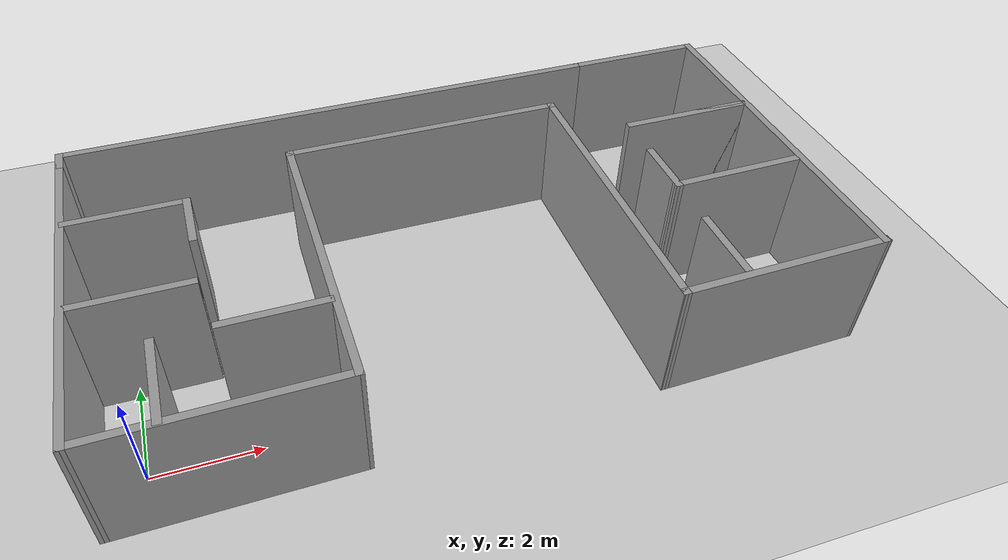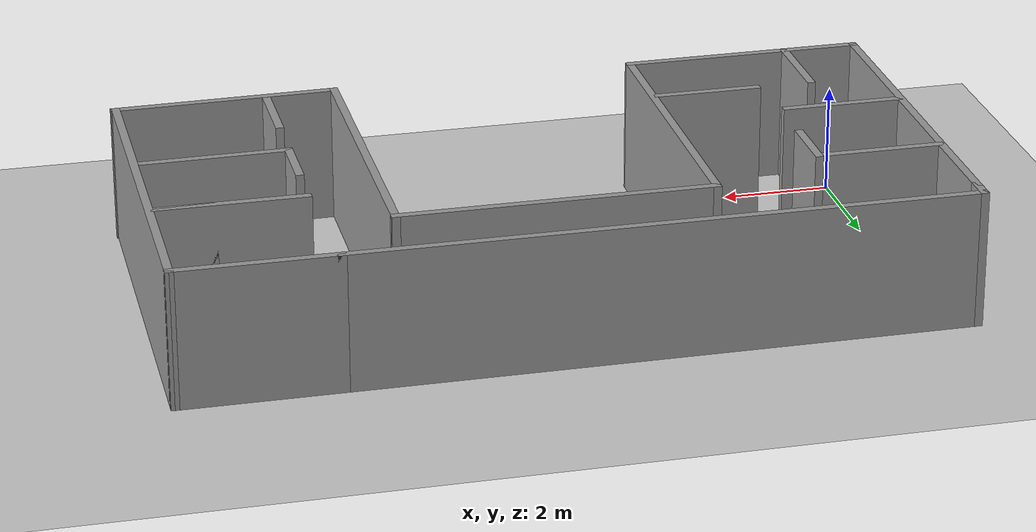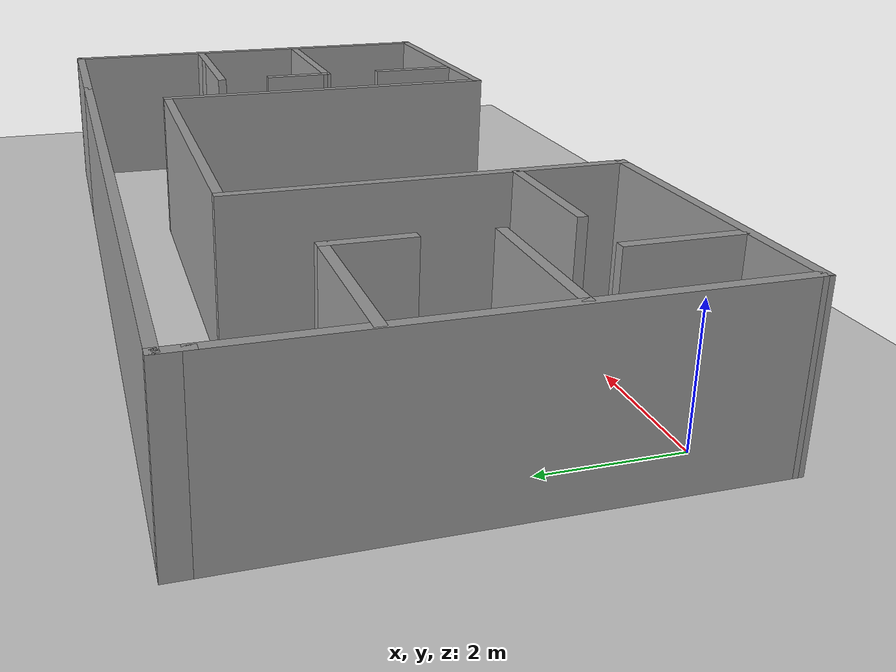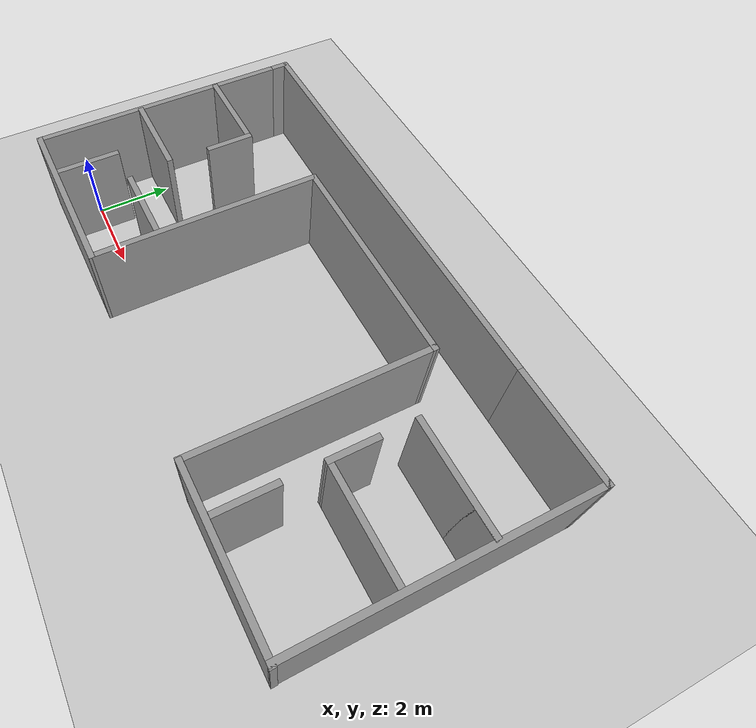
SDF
<sdf version="1.7">
 <world name="default">
  <light name="sun" type="directional">
   <pose>0 0 10 0 -0 0</pose>
   <diffuse>0.8 0.8 0.8 1</diffuse>
   <specular>0.2 0.2 0.2 1</specular>
   <attenuation>
    <range>1000</range>
    <constant>0.9</constant>
    <linear>0.01</linear>
    <quadratic>0.001</quadratic>
   </attenuation>
   <direction>-0.5 0.1 -0.9</direction>
   <spot><inner_angle>0</inner_angle><outer_angle>0</outer_angle><falloff>0</falloff></spot>
  </light>
  <model name="ground_plane">
   <static>1</static>
   <link name="link">
    <collision name="collision">
     <geometry><plane><normal>0 0 1</normal><size>100 100</size></plane></geometry>
     <surface><friction><ode><mu>100</mu><mu2>50</mu2></ode></friction></surface>
    </collision>
    <visual name="visual">
     <cast_shadows>0</cast_shadows>
     <geometry><plane><normal>0 0 1</normal><size>100 100</size></plane></geometry>
     <material>
      <script><uri>file://media/materials/scripts/gazebo.material</uri><name>Gazebo/Grey</name></script>
     </material>
    </visual>
   </link>
  </model>
  <gravity>0 0 -9.8</gravity>
  <magnetic_field>6e-06 2.3e-05 -4.2e-05</magnetic_field>
  <atmosphere type="adiabatic"/>
  <physics type="ode">
   <max_step_size>0.001</max_step_size>
   <real_time_factor>1</real_time_factor>
   <real_time_update_rate>1000</real_time_update_rate>
  </physics>
  <scene><ambient>0.4 0.4 0.4 1</ambient><background>0.7 0.7 0.7 1</background><shadows>1</shadows></scene>
  <spherical_coordinates>
   <surface_model>EARTH_WGS84</surface_model>
   <latitude_deg>0</latitude_deg>
   <longitude_deg>0</longitude_deg>
   <elevation>0</elevation>
   <heading_deg>0</heading_deg>
  </spherical_coordinates>
  <model name="indoors_isolated2">
   <pose>6.24988 2.67944 0 0 -0 0</pose>
   <link name="Wall_0">
    <collision name="Wall_0_Collision">
     <geometry><box><size>4.50008 0.15 2.5</size></box></geometry>
     <pose>0 0 1.25 0 -0 0</pose>
    </collision>
    <visual name="Wall_0_Visual">
     <pose>0 0 1.25 0 -0 0</pose>
     <geometry><box><size>4.50008 0.15 2.5</size></box></geometry>
     <material>
      <script><uri>file://media/materials/scripts/gazebo.material</uri><name>Gazebo/Grey</name></script>
      <ambient>1 1 1 1</ambient>
     </material>
     <meta><layer>0</layer></meta>
    </visual>
    <pose>-4.80329 -3.58655 0 0 -0 0.006115</pose>
   </link>
   <link name="Wall_1">
    <collision name="Wall_1_Collision">
     <geometry><box><size>6 0.15 2.5</size></box></geometry>
     <pose>0 0 1.25 0 -0 0</pose>
    </collision>
    <visual name="Wall_1_Visual">
     <pose>0 0 1.25 0 -0 0</pose>
     <geometry><box><size>6 0.15 2.5</size></box></geometry>
     <material>
      <script><uri>file://media/materials/scripts/gazebo.material</uri><name>Gazebo/Grey</name></script>
      <ambient>1 1 1 1</ambient>
     </material>
     <meta><layer>0</layer></meta>
    </visual>
    <pose>-2.62829 -0.648247 0 0 -0 1.5708</pose>
   </link>
   <link name="Wall_11">
    <collision name="Wall_11_Collision">
     <geometry><box><size>1.25 0.15 2.5</size></box></geometry>
     <pose>0 0 1.25 0 -0 0</pose>
    </collision>
    <visual name="Wall_11_Visual">
     <pose>0 0 1.25 0 -0 0</pose>
     <geometry><box><size>1.25 0.15 2.5</size></box></geometry>
     <material>
      <script><uri>file://media/materials/scripts/gazebo.material</uri><name>Gazebo/Grey</name></script>
      <ambient>1 1 1 1</ambient>
     </material>
     <meta><layer>0</layer></meta>
    </visual>
    <pose>-4.72022 0.860997 0 0 -0 1.5708</pose>
   </link>
   <link name="Wall_12">
    <collision name="Wall_12_Collision">
     <geometry><box><size>2.351 0.15 2.5</size></box></geometry>
     <pose>0 0 1.25 0 -0 0</pose>
    </collision>
    <visual name="Wall_12_Visual">
     <pose>0 0 1.25 0 -0 0</pose>
     <geometry><box><size>2.351 0.15 2.5</size></box></geometry>
     <material>
      <script><uri>file://media/materials/scripts/gazebo.material</uri><name>Gazebo/Grey</name></script>
      <ambient>1 1 1 1</ambient>
     </material>
     <meta><layer>0</layer></meta>
    </visual>
    <pose>-5.84732 1.411 0 0 -0 3.14159</pose>
   </link>
   <link name="Wall_14">
    <collision name="Wall_14_Collision">
     <geometry><box><size>0.5 0.15 2.5</size></box></geometry>
     <pose>0 0 1.25 0 -0 0</pose>
    </collision>
    <visual name="Wall_14_Visual">
     <pose>0 0 1.25 0 -0 0</pose>
     <geometry><box><size>0.5 0.15 2.5</size></box></geometry>
     <material>
      <script><uri>file://media/materials/scripts/gazebo.material</uri><name>Gazebo/Grey</name></script>
      <ambient>1 1 1 1</ambient>
     </material>
     <meta><layer>0</layer></meta>
    </visual>
    <pose>-6.97829 3.42515 0 0 -0 1.5708</pose>
   </link>
   <link name="Wall_15">
    <collision name="Wall_15_Collision">
     <geometry><box><size>11.25 0.15 2.5</size></box></geometry>
     <pose>0 0 1.25 0 -0 0</pose>
    </collision>
    <visual name="Wall_15_Visual">
     <pose>0 0 1.25 0 -0 0</pose>
     <geometry><box><size>11.25 0.15 2.5</size></box></geometry>
     <material>
      <script><uri>file://media/materials/scripts/gazebo.material</uri><name>Gazebo/Grey</name></script>
      <ambient>1 1 1 1</ambient>
     </material>
     <meta><layer>0</layer></meta>
    </visual>
    <pose>-1.42829 3.60015 0 0 -0 0</pose>
   </link>
   <link name="Wall_17">
    <collision name="Wall_17_Collision">
     <geometry><box><size>5.75 0.15 2.5</size></box></geometry>
     <pose>0 0 1.25 0 -0 0</pose>
    </collision>
    <visual name="Wall_17_Visual">
     <pose>0 0 1.25 0 -0 0</pose>
     <geometry><box><size>5.75 0.15 2.5</size></box></geometry>
     <material>
      <script><uri>file://media/materials/scripts/gazebo.material</uri><name>Gazebo/Grey</name></script>
      <ambient>1 1 1 1</ambient>
     </material>
     <meta><layer>0</layer></meta>
    </visual>
    <pose>0.171708 2.27675 0 0 -0 0</pose>
   </link>
   <link name="Wall_18">
    <collision name="Wall_18_Collision">
     <geometry><box><size>6.00048 0.15 2.5</size></box></geometry>
     <pose>0 0 1.25 0 -0 0</pose>
    </collision>
    <visual name="Wall_18_Visual">
     <pose>0 0 1.25 0 -0 0</pose>
     <geometry><box><size>6.00048 0.15 2.5</size></box></geometry>
     <material>
      <script><uri>file://media/materials/scripts/gazebo.material</uri><name>Gazebo/Grey</name></script>
      <ambient>1 1 1 1</ambient>
     </material>
     <meta><layer>0</layer></meta>
    </visual>
    <pose>2.96449 -0.648247 0 0 -0 -1.57326</pose>
   </link>
   <link name="Wall_19">
    <collision name="Wall_19_Collision">
     <geometry><box><size>4.15067 0.15 2.5</size></box></geometry>
     <pose>0 0 1.25 0 -0 0</pose>
    </collision>
    <visual name="Wall_19_Visual">
     <pose>0 0 1.25 0 -0 0</pose>
     <geometry><box><size>4.15067 0.15 2.5</size></box></geometry>
     <material>
      <script><uri>file://media/materials/scripts/gazebo.material</uri><name>Gazebo/Grey</name></script>
      <ambient>1 1 1 1</ambient>
     </material>
     <meta><layer>0</layer></meta>
    </visual>
    <pose>4.97739 -3.53655 0 0 -0 0.018348</pose>
   </link>
   <link name="Wall_20">
    <collision name="Wall_20_Collision">
     <geometry><box><size>7.25002 0.15 2.5</size></box></geometry>
     <pose>0 0 1.25 0 -0 0</pose>
    </collision>
    <visual name="Wall_20_Visual">
     <pose>0 0 1.25 0 -0 0</pose>
     <geometry><box><size>7.25002 0.15 2.5</size></box></geometry>
     <material>
      <script><uri>file://media/materials/scripts/gazebo.material</uri><name>Gazebo/Grey</name></script>
      <ambient>1 1 1 1</ambient>
     </material>
     <meta><layer>0</layer></meta>
    </visual>
    <pose>6.96449 0.050152 0 0 -0 1.56876</pose>
   </link>
   <link name="Wall_21">
    <collision name="Wall_21_Collision">
     <geometry><box><size>3 0.15 2.5</size></box></geometry>
     <pose>0 0 1.25 0 -0 0</pose>
    </collision>
    <visual name="Wall_21_Visual">
     <pose>0 0 1.25 0 -0 0</pose>
     <geometry><box><size>3 0.15 2.5</size></box></geometry>
     <material>
      <script><uri>file://media/materials/scripts/gazebo.material</uri><name>Gazebo/Grey</name></script>
      <ambient>1 1 1 1</ambient>
     </material>
     <meta><layer>0</layer></meta>
    </visual>
    <pose>5.54671 3.60015 0 0 -0 3.14159</pose>
   </link>
   <link name="Wall_23">
    <collision name="Wall_23_Collision">
     <geometry><box><size>2.75 0.15 2.5</size></box></geometry>
     <pose>0 0 1.25 0 -0 0</pose>
    </collision>
    <visual name="Wall_23_Visual">
     <pose>0 0 1.25 0 -0 0</pose>
     <geometry><box><size>2.75 0.15 2.5</size></box></geometry>
     <material>
      <script><uri>file://media/materials/scripts/gazebo.material</uri><name>Gazebo/Grey</name></script>
      <ambient>1 1 1 1</ambient>
     </material>
     <meta><layer>0</layer></meta>
    </visual>
    <pose>5.56206 1.09841 0 0 -0 0</pose>
   </link>
   <link name="Wall_25">
    <collision name="Wall_25_Collision">
     <geometry><box><size>1.13613 0.15 2.5</size></box></geometry>
     <pose>0 0 1.25 0 -0 0</pose>
    </collision>
    <visual name="Wall_25_Visual">
     <pose>0 0 1.25 0 -0 0</pose>
     <geometry><box><size>1.13613 0.15 2.5</size></box></geometry>
     <material>
      <script><uri>file://media/materials/scripts/gazebo.material</uri><name>Gazebo/Grey</name></script>
      <ambient>1 1 1 1</ambient>
     </material>
     <meta><layer>0</layer></meta>
    </visual>
    <pose>6.38911 1.09841 0 0 -0 3.14159</pose>
   </link>
   <link name="Wall_3">
    <collision name="Wall_3_Collision">
     <geometry><box><size>7 0.15 2.5</size></box></geometry>
     <pose>0 0 1.25 0 -0 0</pose>
    </collision>
    <visual name="Wall_3_Visual">
     <pose>0 0 1.25 0 -0 0</pose>
     <geometry><box><size>7 0.15 2.5</size></box></geometry>
     <material>
      <script><uri>file://media/materials/scripts/gazebo.material</uri><name>Gazebo/Grey</name></script>
      <ambient>1 1 1 1</ambient>
     </material>
     <meta><layer>0</layer></meta>
    </visual>
    <pose>-6.97829 -0.174847 0 0 -0 1.5708</pose>
   </link>
   <link name="Wall_30">
    <collision name="Wall_30_Collision">
     <geometry><box><size>1.5 0.15 2.5</size></box></geometry>
     <pose>0 0 1.25 0 -0 0</pose>
    </collision>
    <visual name="Wall_30_Visual">
     <pose>0 0 1.25 0 -0 0</pose>
     <geometry><box><size>1.5 0.15 2.5</size></box></geometry>
     <material>
      <script><uri>file://media/materials/scripts/gazebo.material</uri><name>Gazebo/Grey</name></script>
      <ambient>1 1 1 1</ambient>
     </material>
     <meta><layer>0</layer></meta>
    </visual>
    <pose>4.22333 -2.72203 0 0 -0 1.5708</pose>
   </link>
   <link name="Wall_32">
    <collision name="Wall_32_Collision">
     <geometry><box><size>2.73608 0.15 2.5</size></box></geometry>
     <pose>0 0 1.25 0 -0 0</pose>
    </collision>
    <visual name="Wall_32_Visual">
     <pose>0 0 1.25 0 -0 0</pose>
     <geometry><box><size>2.73608 0.15 2.5</size></box></geometry>
     <material>
      <script><uri>file://media/materials/scripts/gazebo.material</uri><name>Gazebo/Grey</name></script>
      <ambient>1 1 1 1</ambient>
     </material>
     <meta><layer>0</layer></meta>
    </visual>
    <pose>5.52993 -0.945902 0 0 -0 0.010286</pose>
   </link>
   <link name="Wall_34">
    <collision name="Wall_34_Collision">
     <geometry><box><size>1.25 0.15 2.5</size></box></geometry>
     <pose>0 0 1.25 0 -0 0</pose>
    </collision>
    <visual name="Wall_34_Visual">
     <pose>0 0 1.25 0 -0 0</pose>
     <geometry><box><size>1.25 0.15 2.5</size></box></geometry>
     <material>
      <script><uri>file://media/materials/scripts/gazebo.material</uri><name>Gazebo/Grey</name></script>
      <ambient>1 1 1 1</ambient>
     </material>
     <meta><layer>0</layer></meta>
    </visual>
    <pose>4.23696 -0.409202 0 0 -0 -1.5708</pose>
   </link>
   <link name="Wall_5">
    <collision name="Wall_5_Collision">
     <geometry><box><size>2 0.15 2.5</size></box></geometry>
     <pose>0 0 1.25 0 -0 0</pose>
    </collision>
    <visual name="Wall_5_Visual">
     <pose>0 0 1.25 0 -0 0</pose>
     <geometry><box><size>2 0.15 2.5</size></box></geometry>
     <material>
      <script><uri>file://media/materials/scripts/gazebo.material</uri><name>Gazebo/Grey</name></script>
      <ambient>1 1 1 1</ambient>
     </material>
     <meta><layer>0</layer></meta>
    </visual>
    <pose>-3.65067 -1.92552 0 0 -0 0</pose>
   </link>
   <link name="Wall_7">
    <collision name="Wall_7_Collision">
     <geometry><box><size>1.75 0.15 2.5</size></box></geometry>
     <pose>0 0 1.25 0 -0 0</pose>
    </collision>
    <visual name="Wall_7_Visual">
     <pose>0 0 1.25 0 -0 0</pose>
     <geometry><box><size>1.75 0.15 2.5</size></box></geometry>
     <material>
      <script><uri>file://media/materials/scripts/gazebo.material</uri><name>Gazebo/Grey</name></script>
      <ambient>1 1 1 1</ambient>
     </material>
     <meta><layer>0</layer></meta>
    </visual>
    <pose>-5.63021 -2.76575 0 0 -0 -1.5708</pose>
   </link>
   <link name="Wall_9">
    <collision name="Wall_9_Collision">
     <geometry><box><size>2.25 0.15 2.5</size></box></geometry>
     <pose>0 0 1.25 0 -0 0</pose>
    </collision>
    <visual name="Wall_9_Visual">
     <pose>0 0 1.25 0 -0 0</pose>
     <geometry><box><size>2.25 0.15 2.5</size></box></geometry>
     <material>
      <script><uri>file://media/materials/scripts/gazebo.material</uri><name>Gazebo/Grey</name></script>
      <ambient>1 1 1 1</ambient>
     </material>
     <meta><layer>0</layer></meta>
    </visual>
    <pose>-5.87283 -0.79916 0 0 -0 3.14159</pose>
   </link>
   <static>1</static>
  </model>
 </world>
</sdf>
